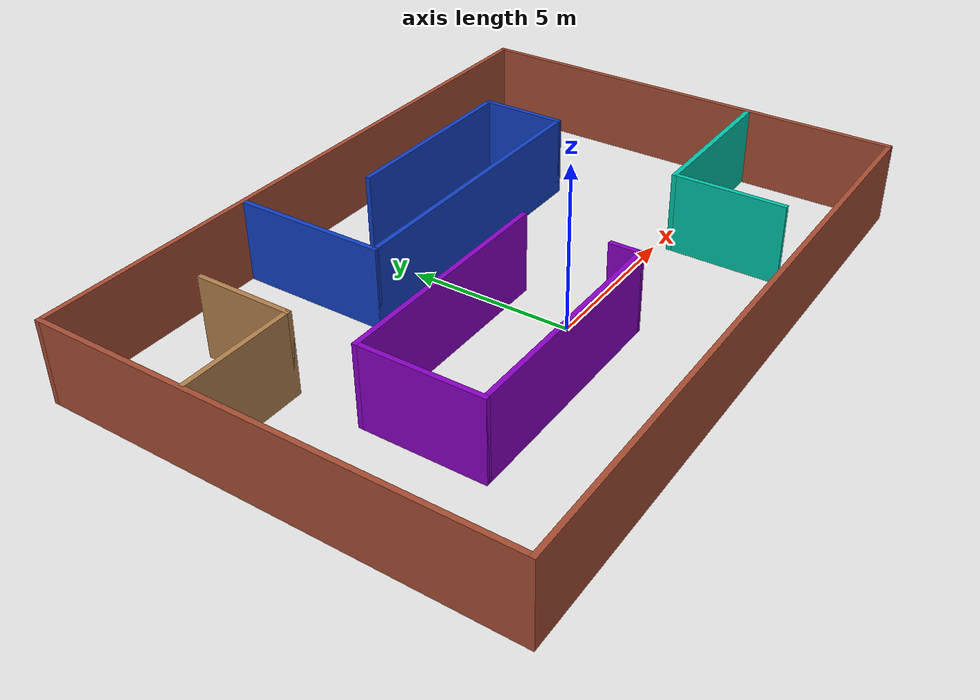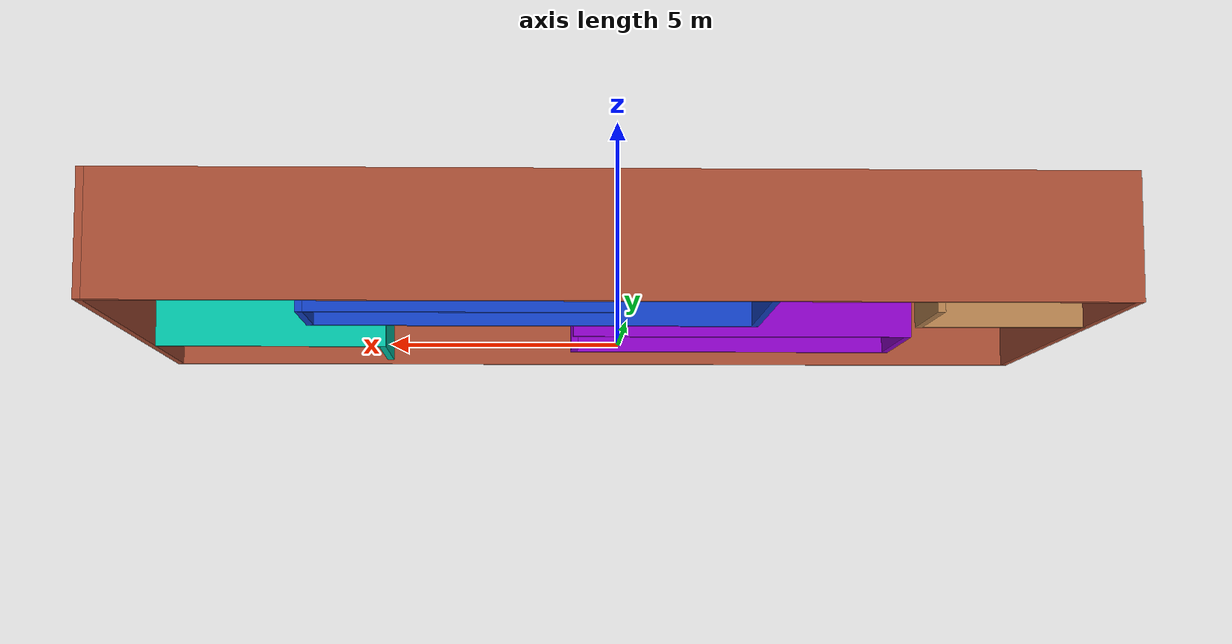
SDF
<?xml version='1.0'?>
<sdf version='1.6'>
  <model name='building'>
    <pose frame=''>0.409663 1.94902 0 0 -0 0</pose>
    <link name='Wall_1'>
      <collision name='Wall_1_Collision'>
        <geometry>
          <box>
            <size>14 0.15 2.5</size>
          </box>
        </geometry>
        <pose frame=''>0 0 1.25 0 -0 0</pose>
      </collision>
      <visual name='Wall_1_Visual'>
        <pose frame=''>0 0 1.25 0 -0 0</pose>
        <geometry>
          <box>
            <size>14 0.15 2.5</size>
          </box>
        </geometry>
        <material>
          <script>
            <uri>file://media/materials/scripts/gazebo.material</uri>
            <name>Gazebo/Bricks</name>
          </script>
          <ambient>1 1 1 1</ambient>
        </material>
        <meta>
          <layer>0</layer>
        </meta>
      </visual>
      <pose frame=''>-9.925 0 0 0 -0 -1.5708</pose>
    </link>
    <link name='Wall_10'>
      <collision name='Wall_10_Collision'>
        <geometry>
          <box>
            <size>3.5 0.15 2.5</size>
          </box>
        </geometry>
        <pose frame=''>0 0 1.25 0 -0 0</pose>
      </collision>
      <visual name='Wall_10_Visual'>
        <pose frame=''>0 0 1.25 0 -0 0</pose>
        <geometry>
          <box>
            <size>3.5 0.15 2.5</size>
          </box>
        </geometry>
        <material>
          <script>
            <uri>file://media/materials/scripts/gazebo.material</uri>
            <name>Gazebo/Grey</name>
          </script>
          <ambient>0 0.764706 0.654902 1</ambient>
        </material>
        <meta>
          <layer>0</layer>
        </meta>
      </visual>
      <pose frame=''>4.8207 -4.04556 0 0 -0 -1.5708</pose>
    </link>
    <link name='Wall_12'>
      <collision name='Wall_12_Collision'>
        <geometry>
          <box>
            <size>7.25 0.15 2.5</size>
          </box>
        </geometry>
        <pose frame=''>0 0 1.25 0 -0 0</pose>
      </collision>
      <visual name='Wall_12_Visual'>
        <pose frame=''>0 0 1.25 0 -0 0</pose>
        <geometry>
          <box>
            <size>7.25 0.15 2.5</size>
          </box>
        </geometry>
        <material>
          <script>
            <uri>file://media/materials/scripts/gazebo.material</uri>
            <name>Gazebo/Grey</name>
          </script>
          <ambient>0.541176 0 0.768627 1</ambient>
        </material>
        <meta>
          <layer>0</layer>
        </meta>
      </visual>
      <pose frame=''>-3.015 0.056778 0 0 -0 3.14159</pose>
    </link>
    <link name='Wall_13'>
      <collision name='Wall_13_Collision'>
        <geometry>
          <box>
            <size>3.75 0.15 2.5</size>
          </box>
        </geometry>
        <pose frame=''>0 0 1.25 0 -0 0</pose>
      </collision>
      <visual name='Wall_13_Visual'>
        <pose frame=''>0 0 1.25 0 -0 0</pose>
        <geometry>
          <box>
            <size>3.75 0.15 2.5</size>
          </box>
        </geometry>
        <material>
          <script>
            <uri>file://media/materials/scripts/gazebo.material</uri>
            <name>Gazebo/Grey</name>
          </script>
          <ambient>0.541176 0 0.768627 1</ambient>
        </material>
        <meta>
          <layer>0</layer>
        </meta>
      </visual>
      <pose frame=''>-6.565 -1.74322 0 0 -0 -1.5708</pose>
    </link>
    <link name='Wall_14'>
      <collision name='Wall_14_Collision'>
        <geometry>
          <box>
            <size>7.25 0.15 2.5</size>
          </box>
        </geometry>
        <pose frame=''>0 0 1.25 0 -0 0</pose>
      </collision>
      <visual name='Wall_14_Visual'>
        <pose frame=''>0 0 1.25 0 -0 0</pose>
        <geometry>
          <box>
            <size>7.25 0.15 2.5</size>
          </box>
        </geometry>
        <material>
          <script>
            <uri>file://media/materials/scripts/gazebo.material</uri>
            <name>Gazebo/Grey</name>
          </script>
          <ambient>0.541176 0 0.768627 1</ambient>
        </material>
        <meta>
          <layer>0</layer>
        </meta>
      </visual>
      <pose frame=''>-3.015 -3.54322 0 0 -0 0</pose>
    </link>
    <link name='Wall_15'>
      <collision name='Wall_15_Collision'>
        <geometry>
          <box>
            <size>1 0.15 2.5</size>
          </box>
        </geometry>
        <pose frame=''>0 0 1.25 0 -0 0</pose>
      </collision>
      <visual name='Wall_15_Visual'>
        <pose frame=''>0 0 1.25 0 -0 0</pose>
        <geometry>
          <box>
            <size>1 0.15 2.5</size>
          </box>
        </geometry>
        <material>
          <script>
            <uri>file://media/materials/scripts/gazebo.material</uri>
            <name>Gazebo/Grey</name>
          </script>
          <ambient>0.541176 0 0.768627 1</ambient>
        </material>
        <meta>
          <layer>0</layer>
        </meta>
      </visual>
      <pose frame=''>0.535003 -3.11822 0 0 -0 1.5708</pose>
    </link>
    <link name='Wall_18'>
      <collision name='Wall_18_Collision'>
        <geometry>
          <box>
            <size>4.75 0.15 2.5</size>
          </box>
        </geometry>
        <pose frame=''>0 0 1.25 0 -0 0</pose>
      </collision>
      <visual name='Wall_18_Visual'>
        <pose frame=''>0 0 1.25 0 -0 0</pose>
        <geometry>
          <box>
            <size>4.75 0.15 2.5</size>
          </box>
        </geometry>
        <material>
          <script>
            <uri>file://media/materials/scripts/gazebo.material</uri>
            <name>Gazebo/Grey</name>
          </script>
          <ambient>0.0666667 0.25098 0.768627 1</ambient>
        </material>
        <meta>
          <layer>0</layer>
        </meta>
      </visual>
      <pose frame=''>-3.08612 4.5991 0 0 -0 -1.5708</pose>
    </link>
    <link name='Wall_19'>
      <collision name='Wall_19_Collision'>
        <geometry>
          <box>
            <size>9.25 0.15 2.5</size>
          </box>
        </geometry>
        <pose frame=''>0 0 1.25 0 -0 0</pose>
      </collision>
      <visual name='Wall_19_Visual'>
        <pose frame=''>0 0 1.25 0 -0 0</pose>
        <geometry>
          <box>
            <size>9.25 0.15 2.5</size>
          </box>
        </geometry>
        <material>
          <script>
            <uri>file://media/materials/scripts/gazebo.material</uri>
            <name>Gazebo/Grey</name>
          </script>
          <ambient>0.0666667 0.25098 0.768627 1</ambient>
        </material>
        <meta>
          <layer>0</layer>
        </meta>
      </visual>
      <pose frame=''>1.46388 2.2991 0 0 -0 0</pose>
    </link>
    <link name='Wall_2'>
      <collision name='Wall_2_Collision'>
        <geometry>
          <box>
            <size>20 0.15 2.5</size>
          </box>
        </geometry>
        <pose frame=''>0 0 1.25 0 -0 0</pose>
      </collision>
      <visual name='Wall_2_Visual'>
        <pose frame=''>0 0 1.25 0 -0 0</pose>
        <geometry>
          <box>
            <size>20 0.15 2.5</size>
          </box>
        </geometry>
        <material>
          <script>
            <uri>file://media/materials/scripts/gazebo.material</uri>
            <name>Gazebo/Bricks</name>
          </script>
          <ambient>1 1 1 1</ambient>
        </material>
        <meta>
          <layer>0</layer>
        </meta>
      </visual>
      <pose frame=''>-0 -6.925 0 0 -0 0</pose>
    </link>
    <link name='Wall_20'>
      <collision name='Wall_20_Collision'>
        <geometry>
          <box>
            <size>2.75 0.15 2.5</size>
          </box>
        </geometry>
        <pose frame=''>0 0 1.25 0 -0 0</pose>
      </collision>
      <visual name='Wall_20_Visual'>
        <pose frame=''>0 0 1.25 0 -0 0</pose>
        <geometry>
          <box>
            <size>2.75 0.15 2.5</size>
          </box>
        </geometry>
        <material>
          <script>
            <uri>file://media/materials/scripts/gazebo.material</uri>
            <name>Gazebo/Grey</name>
          </script>
          <ambient>0.0666667 0.25098 0.768627 1</ambient>
        </material>
        <meta>
          <layer>0</layer>
        </meta>
      </visual>
      <pose frame=''>6.01388 3.5991 0 0 -0 1.5708</pose>
    </link>
    <link name='Wall_21'>
      <collision name='Wall_21_Collision'>
        <geometry>
          <box>
            <size>6.25 0.15 2.5</size>
          </box>
        </geometry>
        <pose frame=''>0 0 1.25 0 -0 0</pose>
      </collision>
      <visual name='Wall_21_Visual'>
        <pose frame=''>0 0 1.25 0 -0 0</pose>
        <geometry>
          <box>
            <size>6.25 0.15 2.5</size>
          </box>
        </geometry>
        <material>
          <script>
            <uri>file://media/materials/scripts/gazebo.material</uri>
            <name>Gazebo/Grey</name>
          </script>
          <ambient>0.0666667 0.25098 0.768627 1</ambient>
        </material>
        <meta>
          <layer>0</layer>
        </meta>
      </visual>
      <pose frame=''>2.96388 4.8991 0 0 -0 3.14159</pose>
    </link>
    <link name='Wall_3'>
      <collision name='Wall_3_Collision'>
        <geometry>
          <box>
            <size>14 0.15 2.5</size>
          </box>
        </geometry>
        <pose frame=''>0 0 1.25 0 -0 0</pose>
      </collision>
      <visual name='Wall_3_Visual'>
        <pose frame=''>0 0 1.25 0 -0 0</pose>
        <geometry>
          <box>
            <size>14 0.15 2.5</size>
          </box>
        </geometry>
        <material>
          <script>
            <uri>file://media/materials/scripts/gazebo.material</uri>
            <name>Gazebo/Bricks</name>
          </script>
          <ambient>1 1 1 1</ambient>
        </material>
        <meta>
          <layer>0</layer>
        </meta>
      </visual>
      <pose frame=''>9.925 0 0 0 -0 1.5708</pose>
    </link>
    <link name='Wall_4'>
      <collision name='Wall_4_Collision'>
        <geometry>
          <box>
            <size>20 0.15 2.5</size>
          </box>
        </geometry>
        <pose frame=''>0 0 1.25 0 -0 0</pose>
      </collision>
      <visual name='Wall_4_Visual'>
        <pose frame=''>0 0 1.25 0 -0 0</pose>
        <geometry>
          <box>
            <size>20 0.15 2.5</size>
          </box>
        </geometry>
        <material>
          <script>
            <uri>file://media/materials/scripts/gazebo.material</uri>
            <name>Gazebo/Bricks</name>
          </script>
          <ambient>1 1 1 1</ambient>
        </material>
        <meta>
          <layer>0</layer>
        </meta>
      </visual>
      <pose frame=''>-0 6.925 0 0 -0 3.14159</pose>
    </link>
    <link name='Wall_6'>
      <collision name='Wall_6_Collision'>
        <geometry>
          <box>
            <size>3.5 0.15 2.5</size>
          </box>
        </geometry>
        <pose frame=''>0 0 1.25 0 -0 0</pose>
      </collision>
      <visual name='Wall_6_Visual'>
        <pose frame=''>0 0 1.25 0 -0 0</pose>
        <geometry>
          <box>
            <size>3.5 0.15 2.5</size>
          </box>
        </geometry>
        <material>
          <script>
            <uri>file://media/materials/scripts/gazebo.material</uri>
            <name>Gazebo/Wood</name>
          </script>
          <ambient>1 1 1 1</ambient>
        </material>
        <meta>
          <layer>0</layer>
        </meta>
      </visual>
      <pose frame=''>-8.14663 2.24138 0 0 -0 0</pose>
    </link>
    <link name='Wall_7'>
      <collision name='Wall_7_Collision'>
        <geometry>
          <box>
            <size>3 0.15 2.5</size>
          </box>
        </geometry>
        <pose frame=''>0 0 1.25 0 -0 0</pose>
      </collision>
      <visual name='Wall_7_Visual'>
        <pose frame=''>0 0 1.25 0 -0 0</pose>
        <geometry>
          <box>
            <size>3 0.15 2.5</size>
          </box>
        </geometry>
        <material>
          <script>
            <uri>file://media/materials/scripts/gazebo.material</uri>
            <name>Gazebo/Wood</name>
          </script>
          <ambient>1 1 1 1</ambient>
        </material>
        <meta>
          <layer>0</layer>
        </meta>
      </visual>
      <pose frame=''>-6.47163 3.66638 0 0 -0 1.5708</pose>
    </link>
    <link name='Wall_9'>
      <collision name='Wall_9_Collision'>
        <geometry>
          <box>
            <size>5.25 0.15 2.5</size>
          </box>
        </geometry>
        <pose frame=''>0 0 1.25 0 -0 0</pose>
      </collision>
      <visual name='Wall_9_Visual'>
        <pose frame=''>0 0 1.25 0 -0 0</pose>
        <geometry>
          <box>
            <size>5.25 0.15 2.5</size>
          </box>
        </geometry>
        <material>
          <script>
            <uri>file://media/materials/scripts/gazebo.material</uri>
            <name>Gazebo/Grey</name>
          </script>
          <ambient>0 0.764706 0.654902 1</ambient>
        </material>
        <meta>
          <layer>0</layer>
        </meta>
      </visual>
      <pose frame=''>7.3707 -2.37056 0 0 -0 3.14159</pose>
    </link>
    <static>1</static>
  </model>
</sdf>
